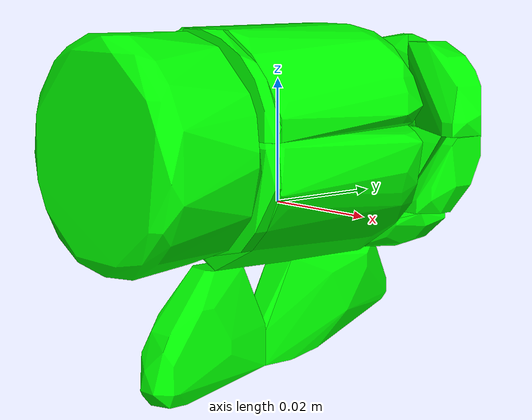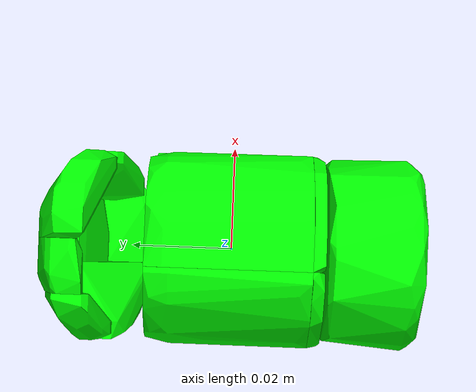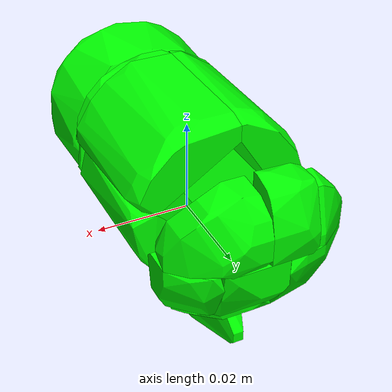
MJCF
<mujoco model="shapenet9-22">
  <asset>
    <mesh file="meshes/shapenet9-22/shapenet9-22_0.stl" name="shapenet9-22_0" scale="0.1 0.1 0.1"/>
    <mesh file="meshes/shapenet9-22/shapenet9-22_1.stl" name="shapenet9-22_1" scale="0.1 0.1 0.1"/>
    <mesh file="meshes/shapenet9-22/shapenet9-22_2.stl" name="shapenet9-22_2" scale="0.1 0.1 0.1"/>
    <mesh file="meshes/shapenet9-22/shapenet9-22_3.stl" name="shapenet9-22_3" scale="0.1 0.1 0.1"/>
    <mesh file="meshes/shapenet9-22/shapenet9-22_4.stl" name="shapenet9-22_4" scale="0.1 0.1 0.1"/>
    <mesh file="meshes/shapenet9-22/shapenet9-22_5.stl" name="shapenet9-22_5" scale="0.1 0.1 0.1"/>
    <mesh file="meshes/shapenet9-22/shapenet9-22_6.stl" name="shapenet9-22_6" scale="0.1 0.1 0.1"/>
    <mesh file="meshes/shapenet9-22/shapenet9-22_7.stl" name="shapenet9-22_7" scale="0.1 0.1 0.1"/>
    <mesh file="meshes/shapenet9-22/shapenet9-22_8.stl" name="shapenet9-22_8" scale="0.1 0.1 0.1"/>
    <mesh file="meshes/shapenet9-22/shapenet9-22_9.stl" name="shapenet9-22_9" scale="0.1 0.1 0.1"/>
    <mesh file="meshes/shapenet9-22/shapenet9-22_10.stl" name="shapenet9-22_10" scale="0.1 0.1 0.1"/>
    <mesh file="meshes/shapenet9-22/shapenet9-22_11.stl" name="shapenet9-22_11" scale="0.1 0.1 0.1"/>
    <mesh file="meshes/shapenet9-22/shapenet9-22_12.stl" name="shapenet9-22_12" scale="0.1 0.1 0.1"/>
    <mesh file="meshes/shapenet9-22/shapenet9-22_13.stl" name="shapenet9-22_13" scale="0.1 0.1 0.1"/>
    <mesh file="meshes/shapenet9-22/shapenet9-22_14.stl" name="shapenet9-22_14" scale="0.1 0.1 0.1"/>
    <mesh file="meshes/shapenet9-22/shapenet9-22_15.stl" name="shapenet9-22_15" scale="0.1 0.1 0.1"/>
    <mesh file="meshes/shapenet9-22/shapenet9-22_16.stl" name="shapenet9-22_16" scale="0.1 0.1 0.1"/>
    <mesh file="meshes/shapenet9-22/shapenet9-22_17.stl" name="shapenet9-22_17" scale="0.1 0.1 0.1"/>
  </asset>
  <worldbody>
    <body>
      <body name="collision">
        <geom pos="0 0 0" mesh="shapenet9-22_0" type="mesh" solimp="0.998 0.998 0.001" solref="0.001 1" density="100" friction="0.95 0.3 0.1" rgba="0 1 0 1" group="1" condim="4"/>
        <geom pos="0 0 0" mesh="shapenet9-22_1" type="mesh" solimp="0.998 0.998 0.001" solref="0.001 1" density="100" friction="0.95 0.3 0.1" rgba="0 1 0 1" group="1" condim="4"/>
        <geom pos="0 0 0" mesh="shapenet9-22_2" type="mesh" solimp="0.998 0.998 0.001" solref="0.001 1" density="100" friction="0.95 0.3 0.1" rgba="0 1 0 1" group="1" condim="4"/>
        <geom pos="0 0 0" mesh="shapenet9-22_3" type="mesh" solimp="0.998 0.998 0.001" solref="0.001 1" density="100" friction="0.95 0.3 0.1" rgba="0 1 0 1" group="1" condim="4"/>
        <geom pos="0 0 0" mesh="shapenet9-22_4" type="mesh" solimp="0.998 0.998 0.001" solref="0.001 1" density="100" friction="0.95 0.3 0.1" rgba="0 1 0 1" group="1" condim="4"/>
        <geom pos="0 0 0" mesh="shapenet9-22_5" type="mesh" solimp="0.998 0.998 0.001" solref="0.001 1" density="100" friction="0.95 0.3 0.1" rgba="0 1 0 1" group="1" condim="4"/>
        <geom pos="0 0 0" mesh="shapenet9-22_6" type="mesh" solimp="0.998 0.998 0.001" solref="0.001 1" density="100" friction="0.95 0.3 0.1" rgba="0 1 0 1" group="1" condim="4"/>
        <geom pos="0 0 0" mesh="shapenet9-22_7" type="mesh" solimp="0.998 0.998 0.001" solref="0.001 1" density="100" friction="0.95 0.3 0.1" rgba="0 1 0 1" group="1" condim="4"/>
        <geom pos="0 0 0" mesh="shapenet9-22_8" type="mesh" solimp="0.998 0.998 0.001" solref="0.001 1" density="100" friction="0.95 0.3 0.1" rgba="0 1 0 1" group="1" condim="4"/>
        <geom pos="0 0 0" mesh="shapenet9-22_9" type="mesh" solimp="0.998 0.998 0.001" solref="0.001 1" density="100" friction="0.95 0.3 0.1" rgba="0 1 0 1" group="1" condim="4"/>
        <geom pos="0 0 0" mesh="shapenet9-22_10" type="mesh" solimp="0.998 0.998 0.001" solref="0.001 1" density="100" friction="0.95 0.3 0.1" rgba="0 1 0 1" group="1" condim="4"/>
        <geom pos="0 0 0" mesh="shapenet9-22_11" type="mesh" solimp="0.998 0.998 0.001" solref="0.001 1" density="100" friction="0.95 0.3 0.1" rgba="0 1 0 1" group="1" condim="4"/>
        <geom pos="0 0 0" mesh="shapenet9-22_12" type="mesh" solimp="0.998 0.998 0.001" solref="0.001 1" density="100" friction="0.95 0.3 0.1" rgba="0 1 0 1" group="1" condim="4"/>
        <geom pos="0 0 0" mesh="shapenet9-22_13" type="mesh" solimp="0.998 0.998 0.001" solref="0.001 1" density="100" friction="0.95 0.3 0.1" rgba="0 1 0 1" group="1" condim="4"/>
        <geom pos="0 0 0" mesh="shapenet9-22_14" type="mesh" solimp="0.998 0.998 0.001" solref="0.001 1" density="100" friction="0.95 0.3 0.1" rgba="0 1 0 1" group="1" condim="4"/>
        <geom pos="0 0 0" mesh="shapenet9-22_15" type="mesh" solimp="0.998 0.998 0.001" solref="0.001 1" density="100" friction="0.95 0.3 0.1" rgba="0 1 0 1" group="1" condim="4"/>
        <geom pos="0 0 0" mesh="shapenet9-22_16" type="mesh" solimp="0.998 0.998 0.001" solref="0.001 1" density="100" friction="0.95 0.3 0.1" rgba="0 1 0 1" group="1" condim="4"/>
        <geom pos="0 0 0" mesh="shapenet9-22_17" type="mesh" solimp="0.998 0.998 0.001" solref="0.001 1" density="100" friction="0.95 0.3 0.1" rgba="0 1 0 1" group="1" condim="4"/>
      </body>
      <body name="visual">
        <geom pos="0 0 0" mesh="shapenet9-22_0" type="mesh" rgba="0 1 0 1" conaffinity="0" contype="0" group="0" mass="0.0001"/>
        <geom pos="0 0 0" mesh="shapenet9-22_1" type="mesh" rgba="0 1 0 1" conaffinity="0" contype="0" group="0" mass="0.0001"/>
        <geom pos="0 0 0" mesh="shapenet9-22_2" type="mesh" rgba="0 1 0 1" conaffinity="0" contype="0" group="0" mass="0.0001"/>
        <geom pos="0 0 0" mesh="shapenet9-22_3" type="mesh" rgba="0 1 0 1" conaffinity="0" contype="0" group="0" mass="0.0001"/>
        <geom pos="0 0 0" mesh="shapenet9-22_4" type="mesh" rgba="0 1 0 1" conaffinity="0" contype="0" group="0" mass="0.0001"/>
        <geom pos="0 0 0" mesh="shapenet9-22_5" type="mesh" rgba="0 1 0 1" conaffinity="0" contype="0" group="0" mass="0.0001"/>
        <geom pos="0 0 0" mesh="shapenet9-22_6" type="mesh" rgba="0 1 0 1" conaffinity="0" contype="0" group="0" mass="0.0001"/>
        <geom pos="0 0 0" mesh="shapenet9-22_7" type="mesh" rgba="0 1 0 1" conaffinity="0" contype="0" group="0" mass="0.0001"/>
        <geom pos="0 0 0" mesh="shapenet9-22_8" type="mesh" rgba="0 1 0 1" conaffinity="0" contype="0" group="0" mass="0.0001"/>
        <geom pos="0 0 0" mesh="shapenet9-22_9" type="mesh" rgba="0 1 0 1" conaffinity="0" contype="0" group="0" mass="0.0001"/>
        <geom pos="0 0 0" mesh="shapenet9-22_10" type="mesh" rgba="0 1 0 1" conaffinity="0" contype="0" group="0" mass="0.0001"/>
        <geom pos="0 0 0" mesh="shapenet9-22_11" type="mesh" rgba="0 1 0 1" conaffinity="0" contype="0" group="0" mass="0.0001"/>
        <geom pos="0 0 0" mesh="shapenet9-22_12" type="mesh" rgba="0 1 0 1" conaffinity="0" contype="0" group="0" mass="0.0001"/>
        <geom pos="0 0 0" mesh="shapenet9-22_13" type="mesh" rgba="0 1 0 1" conaffinity="0" contype="0" group="0" mass="0.0001"/>
        <geom pos="0 0 0" mesh="shapenet9-22_14" type="mesh" rgba="0 1 0 1" conaffinity="0" contype="0" group="0" mass="0.0001"/>
        <geom pos="0 0 0" mesh="shapenet9-22_15" type="mesh" rgba="0 1 0 1" conaffinity="0" contype="0" group="0" mass="0.0001"/>
        <geom pos="0 0 0" mesh="shapenet9-22_16" type="mesh" rgba="0 1 0 1" conaffinity="0" contype="0" group="0" mass="0.0001"/>
        <geom pos="0 0 0" mesh="shapenet9-22_17" type="mesh" rgba="0 1 0 1" conaffinity="0" contype="0" group="0" mass="0.0001"/>
      </body>
      <site rgba="0 0 0 0" size="0.005" pos="0 0 -0.06" name="bottom_site"/>
      <site rgba="0 0 0 0" size="0.005" pos="0 0 0.04" name="top_site"/>
      <site rgba="0 0 0 0" size="0.005" pos="0.025 0.025 0" name="horizontal_radius_site"/>
    </body>
  </worldbody>
</mujoco>
